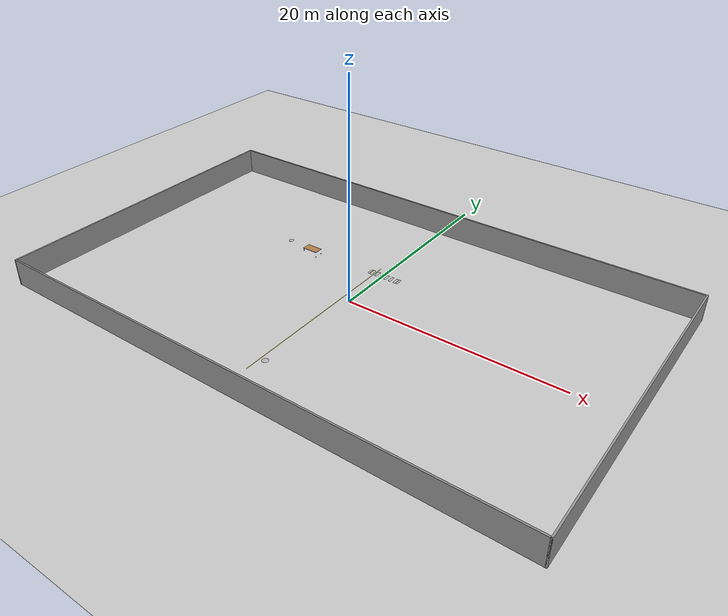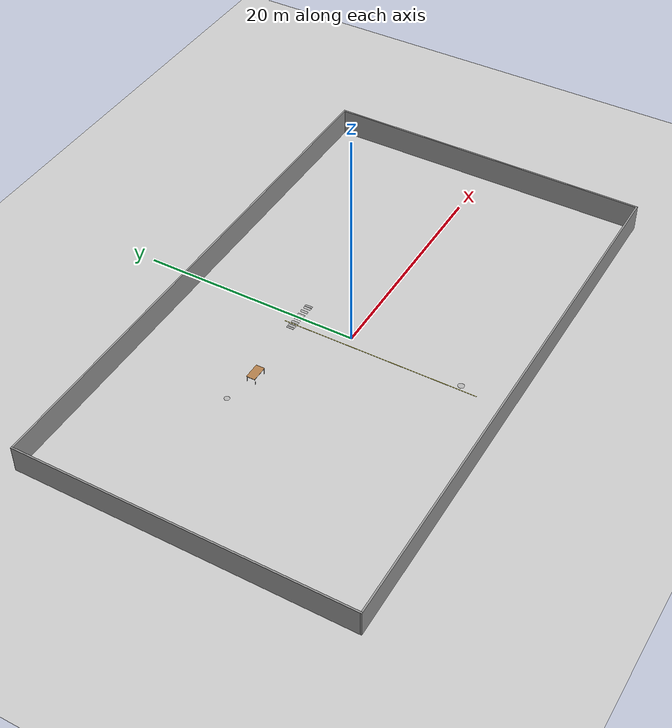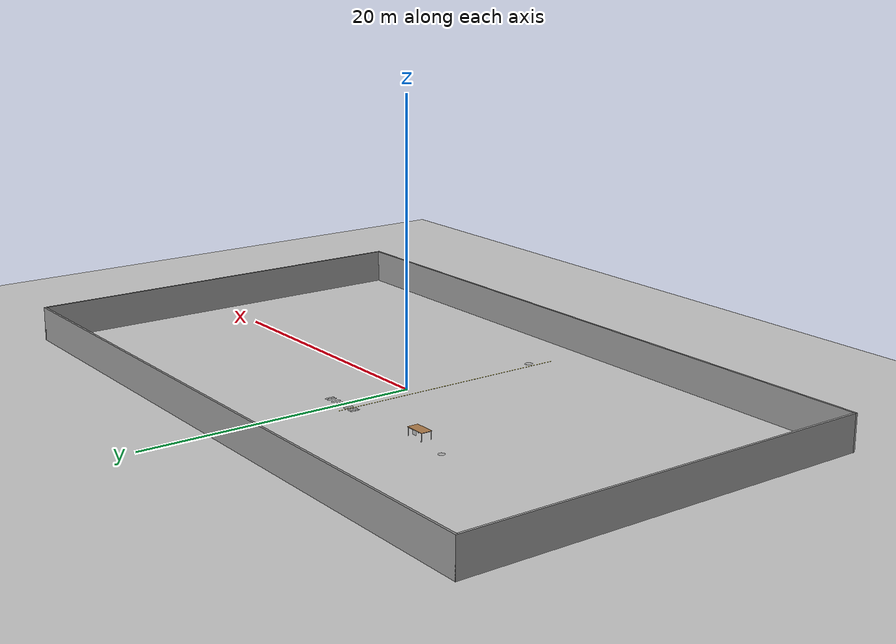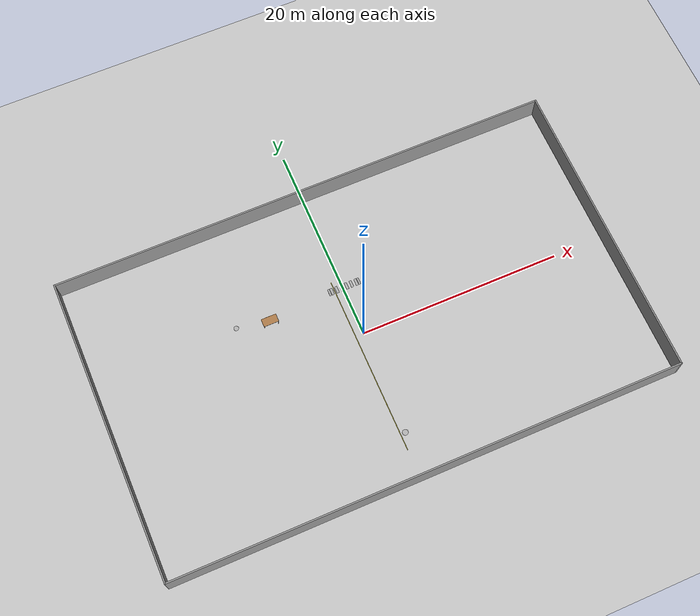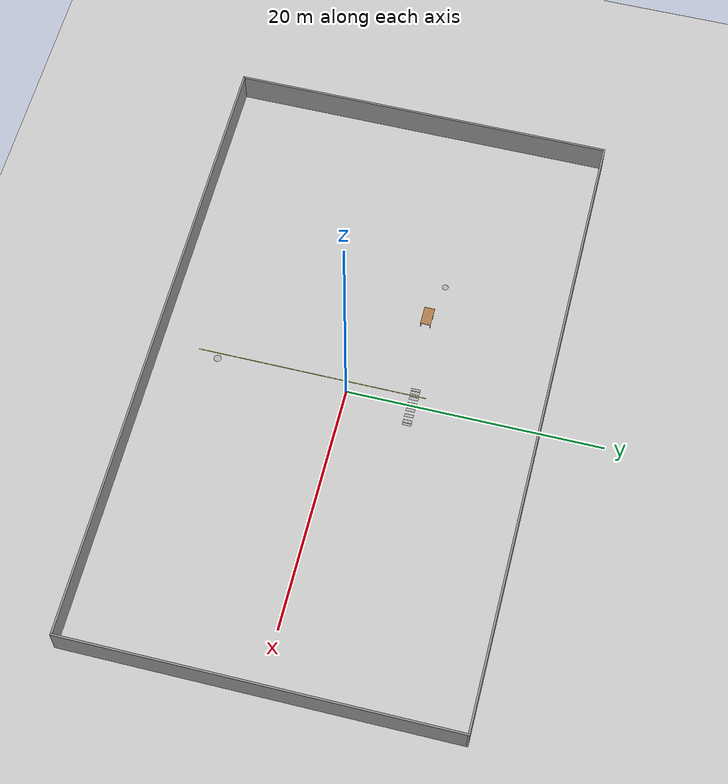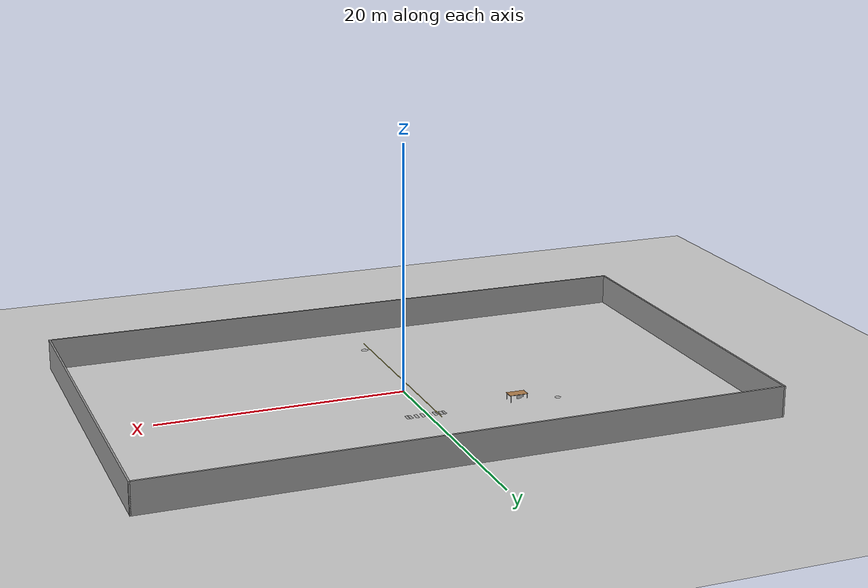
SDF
<sdf version="1.6">
 <world name="default">
  <model name="ground_plane">
   <static>1</static>
   <link name="link">
    <collision name="collision">
     <geometry><plane><normal>0 0 1</normal><size>100 100</size></plane></geometry>
     <surface><friction><ode><mu>100</mu><mu2>50</mu2></ode></friction></surface>
    </collision>
    <visual name="visual">
     <cast_shadows>0</cast_shadows>
     <geometry><plane><normal>0 0 1</normal><size>100 100</size></plane></geometry>
     <material>
      <script><uri>file://media/materials/scripts/gazebo.material</uri><name>Gazebo/Grey</name></script>
     </material>
    </visual>
   </link>
  </model>
  <model name="factoryWall">
   <link name="Wall_0">
    <collision name="Wall_0_Collision">
     <geometry><box><size>30.15 0.15 2.5</size></box></geometry>
     <pose>0 0 1.25 0 -0 0</pose>
    </collision>
    <visual name="Wall_0_Visual">
     <pose>0 0 1.25 0 -0 0</pose>
     <geometry><box><size>30.15 0.15 2.5</size></box></geometry>
     <material>
      <script><uri>file://media/materials/scripts/gazebo.material</uri><name>Gazebo/Grey</name></script>
      <ambient>1 1 1 1</ambient>
     </material>
     <meta><layer>0</layer></meta>
    </visual>
    <pose>25 0 0 0 -0 1.5708</pose>
   </link>
   <link name="Wall_2">
    <collision name="Wall_2_Collision">
     <geometry><box><size>30.15 0.15 2.5</size></box></geometry>
     <pose>0 0 1.25 0 -0 0</pose>
    </collision>
    <visual name="Wall_2_Visual">
     <pose>0 0 1.25 0 -0 0</pose>
     <geometry><box><size>30.15 0.15 2.5</size></box></geometry>
     <material>
      <script><uri>file://media/materials/scripts/gazebo.material</uri><name>Gazebo/Grey</name></script>
      <ambient>1 1 1 1</ambient>
     </material>
     <meta><layer>0</layer></meta>
    </visual>
    <pose>-25 0 0 0 -0 1.5708</pose>
   </link>
   <link name="Wall_4">
    <collision name="Wall_4_Collision">
     <geometry><box><size>50.15 0.15 2.5</size></box></geometry>
     <pose>0 0 1.25 0 -0 0</pose>
    </collision>
    <visual name="Wall_4_Visual">
     <pose>0 0 1.25 0 -0 0</pose>
     <geometry><box><size>50.15 0.15 2.5</size></box></geometry>
     <material>
      <script><uri>file://media/materials/scripts/gazebo.material</uri><name>Gazebo/Grey</name></script>
      <ambient>1 1 1 1</ambient>
     </material>
     <meta><layer>0</layer></meta>
    </visual>
    <pose>0 15 0 0 -0 0</pose>
   </link>
   <link name="Wall_6">
    <collision name="Wall_6_Collision">
     <geometry><box><size>50.15 0.15 2.5</size></box></geometry>
     <pose>0 0 1.25 0 -0 0</pose>
    </collision>
    <visual name="Wall_6_Visual">
     <pose>0 0 1.25 0 -0 0</pose>
     <geometry><box><size>50.15 0.15 2.5</size></box></geometry>
     <material>
      <script><uri>file://media/materials/scripts/gazebo.material</uri><name>Gazebo/Grey</name></script>
      <ambient>1 1 1 1</ambient>
     </material>
     <meta><layer>0</layer></meta>
    </visual>
    <pose>0 -15 0 0 -0 0</pose>
   </link>
   <static>1</static>
  </model>
  <model name="line18m_0">
   <link name="link_1">
    <inertial>
     <mass>1</mass>
     <inertia>
      <ixx>0.166667</ixx>
      <ixy>0</ixy>
      <ixz>0</ixz>
      <iyy>0.166667</iyy>
      <iyz>0</iyz>
      <izz>0.166667</izz>
     </inertia>
    </inertial>
    <visual name="visual">
     <geometry><box><size>0.05 18 0.001</size></box></geometry>
     <material>
      <lighting>1</lighting>
      <script><uri>file://media/materials/scripts/gazebo.material</uri><name>Gazebo/Yellow</name></script>
     </material>
    </visual>
   </link>
   <static>1</static>
   <pose>-0.857987 -2.97176 0 0 -0 0</pose>
  </model>
  <model name="crosswalk_3">
   <link name="link_0">
    <inertial>
     <mass>1</mass>
     <inertia>
      <ixx>0.166667</ixx>
      <ixy>0</ixy>
      <ixz>0</ixz>
      <iyy>0.166667</iyy>
      <iyz>0</iyz>
      <izz>0.166667</izz>
     </inertia>
    </inertial>
    <visual name="visual">
     <pose>0.25 0 0 0 -0 0</pose>
     <geometry><box><size>0.25 0.7 0.001</size></box></geometry>
     <material><lighting>1</lighting></material>
    </visual>
    <visual name="ModelPreview_0::link_0::visual_1">
     <pose>0.75 0 0 0 -0 0</pose>
     <geometry><box><size>0.25 0.7 0.001</size></box></geometry>
     <material><lighting>1</lighting></material>
    </visual>
    <visual name="ModelPreview_0::link_0::visual_2">
     <pose>1.25 0 0 0 -0 0</pose>
     <geometry><box><size>0.25 0.7 0.001</size></box></geometry>
     <material><lighting>1</lighting></material>
    </visual>
    <visual name="ModelPreview_0::link_0::visual_3">
     <pose>-0.25 0 0 0 -0 0</pose>
     <geometry><box><size>0.25 0.7 0.001</size></box></geometry>
     <material><lighting>1</lighting></material>
    </visual>
    <visual name="ModelPreview_0::link_0::visual_4">
     <pose>-0.75 0 0 0 -0 0</pose>
     <geometry><box><size>0.25 0.7 0.001</size></box></geometry>
     <material><lighting>1</lighting></material>
    </visual>
    <visual name="ModelPreview_0::link_0::visual_5">
     <pose>-1.25 0 0 0 -0 0</pose>
     <geometry><box><size>0.25 0.7 0.001</size></box></geometry>
     <material><lighting>1</lighting></material>
    </visual>
    <visual name="ModelPreview_0::link_0::visual_6">
     <pose>-1.6 0.35 0 -1.5708 -0 -1.5708</pose>
     <geometry>
      <mesh><uri>model://crosswalk/model/Warning+sign+confined+space/model.dae</uri><scale>2.35 2 0.9</scale></mesh>
     </geometry>
    </visual>
    <visual name="ModelPreview_0::link_0::visual_7">
     <pose>1.6 -0.35 0 -1.5708 0 1.5708</pose>
     <geometry>
      <mesh><uri>model://crosswalk/model/Warning+sign+confined+space/model.dae</uri><scale>2.35 2 0.9</scale></mesh>
     </geometry>
     <material><lighting>1</lighting></material>
    </visual>
   </link>
   <static>1</static>
   <pose>0.13411 5.11242 0 0 -0 0</pose>
  </model>
  <model name="stopSign_5">
   <link name="link_0">
    <inertial>
     <mass>1</mass>
     <inertia><ixx>0.145833</ixx><ixy>0</ixy><ixz>0</ixz><iyy>0.145833</iyy><iyz>0</iyz><izz>0.125</izz></inertia>
    </inertial>
    <visual name="visual">
     <geometry><mesh><uri>model://stopSign/model/model.dae</uri><scale>1 1 0.1</scale></mesh></geometry>
     <material><lighting>1</lighting></material>
    </visual>
   </link>
   <static>1</static>
   <pose>-0.103323 -10.0703 0 0 0 -3.14159</pose>
  </model>
  <model name="noForklift_1">
   <link name="link_3">
    <inertial>
     <mass>1</mass>
     <inertia>
      <ixx>0.166667</ixx>
      <ixy>0</ixy>
      <ixz>0</ixz>
      <iyy>0.166667</iyy>
      <iyz>0</iyz>
      <izz>0.166667</izz>
     </inertia>
    </inertial>
    <visual name="ModelPreview_6::link_3::visual_9">
     <pose>-0.08 -0.31 0 0 -0 1</pose>
     <geometry>
      <mesh><uri>model://noForklift/model/model.dae</uri><scale>0.266 0.266 0.266</scale></mesh>
     </geometry>
     <material><lighting>1</lighting></material>
    </visual>
    <collision name="collision_9">
     <geometry><cylinder><radius>0.25</radius><length>0.001</length></cylinder></geometry>
     <surface>
      <friction>
       <ode><mu>1</mu><mu2>1</mu2><fdir1>0 0 0</fdir1><slip1>0</slip1><slip2>0</slip2></ode>
       <torsional>
        <coefficient>1</coefficient>
        <patch_radius>0</patch_radius>
        <surface_radius>0</surface_radius>
        <use_patch_radius>1</use_patch_radius>
        <ode><slip>0</slip></ode>
       </torsional>
      </friction>
      <bounce><restitution_coefficient>0</restitution_coefficient><threshold>1e+06</threshold></bounce>
      <contact>
       <collide_without_contact>0</collide_without_contact>
       <collide_without_contact_bitmask>1</collide_without_contact_bitmask>
       <collide_bitmask>1</collide_bitmask>
       <ode>
        <soft_cfm>0</soft_cfm>
        <soft_erp>0.2</soft_erp>
        <kp>1e+13</kp>
        <kd>1</kd>
        <max_vel>0.01</max_vel>
        <min_depth>0</min_depth>
       </ode>
       <bullet>
        <split_impulse>1</split_impulse>
        <split_impulse_penetration_threshold>-0.01</split_impulse_penetration_threshold>
        <soft_cfm>0</soft_cfm>
        <soft_erp>0.2</soft_erp>
        <kp>1e+13</kp>
        <kd>1</kd>
       </bullet>
      </contact>
     </surface>
    </collision>
   </link>
   <static>1</static>
   <pose>-10.83 5.4 0 0 -0 1.5708</pose>
  </model>
  <model name="table_0">
   <static>1</static>
   <link name="link">
    <collision name="surface">
     <pose>0 0 1 0 -0 0</pose>
     <geometry><box><size>1.5 0.8 0.03</size></box></geometry>
     <surface><friction><ode><mu>0.6</mu><mu2>0.6</mu2></ode></friction></surface>
    </collision>
    <visual name="visual1">
     <pose>0 0 1 0 -0 0</pose>
     <geometry><box><size>1.5 0.8 0.03</size></box></geometry>
     <material>
      <script><uri>file://media/materials/scripts/gazebo.material</uri><name>Gazebo/Wood</name></script>
     </material>
    </visual>
    <collision name="front_left_leg">
     <pose>0.68 0.38 0.5 0 -0 0</pose>
     <geometry><cylinder><radius>0.02</radius><length>1</length></cylinder></geometry>
    </collision>
    <visual name="front_left_leg">
     <pose>0.68 0.38 0.5 0 -0 0</pose>
     <geometry><cylinder><radius>0.02</radius><length>1</length></cylinder></geometry>
     <material>
      <script><uri>file://media/materials/scripts/gazebo.material</uri><name>Gazebo/Grey</name></script>
     </material>
    </visual>
    <collision name="front_right_leg">
     <pose>0.68 -0.38 0.5 0 -0 0</pose>
     <geometry><cylinder><radius>0.02</radius><length>1</length></cylinder></geometry>
    </collision>
    <visual name="front_right_leg">
     <pose>0.68 -0.38 0.5 0 -0 0</pose>
     <geometry><cylinder><radius>0.02</radius><length>1</length></cylinder></geometry>
     <material>
      <script><uri>file://media/materials/scripts/gazebo.material</uri><name>Gazebo/Grey</name></script>
     </material>
    </visual>
    <collision name="back_right_leg">
     <pose>-0.68 -0.38 0.5 0 -0 0</pose>
     <geometry><cylinder><radius>0.02</radius><length>1</length></cylinder></geometry>
    </collision>
    <visual name="back_right_leg">
     <pose>-0.68 -0.38 0.5 0 -0 0</pose>
     <geometry><cylinder><radius>0.02</radius><length>1</length></cylinder></geometry>
     <material>
      <script><uri>file://media/materials/scripts/gazebo.material</uri><name>Gazebo/Grey</name></script>
     </material>
    </visual>
    <collision name="back_left_leg">
     <pose>-0.68 0.38 0.5 0 -0 0</pose>
     <geometry><cylinder><radius>0.02</radius><length>1</length></cylinder></geometry>
    </collision>
    <visual name="back_left_leg">
     <pose>-0.68 0.38 0.5 0 -0 0</pose>
     <geometry><cylinder><radius>0.02</radius><length>1</length></cylinder></geometry>
     <material>
      <script><uri>file://media/materials/scripts/gazebo.material</uri><name>Gazebo/Grey</name></script>
     </material>
    </visual>
   </link>
   <pose>-7.68152 4.54 -0.5 0 -0 0</pose>
  </model>
  <model name="60x45sign_keepaway_0">
   <link name="link_0">
    <inertial>
     <mass>1</mass>
     <inertia>
      <ixx>0.166667</ixx>
      <ixy>0</ixy>
      <ixz>0</ixz>
      <iyy>0.166667</iyy>
      <iyz>0</iyz>
      <izz>0.166667</izz>
     </inertia>
    </inertial>
    <visual name="visual">
     <pose>-0.2 0 -0.15 0 -0 0</pose>
     <geometry>
      <mesh><uri>model://60x45sign_keepaway/model/model.dae</uri><scale>1.4 1 1.4</scale></mesh>
     </geometry>
     <material><lighting>1</lighting></material>
    </visual>
    <collision name="collision">
     <geometry><box><size>0.6 0.005 0.45</size></box></geometry>
     <surface>
      <friction>
       <ode><mu>1</mu><mu2>1</mu2><fdir1>0 0 0</fdir1><slip1>0</slip1><slip2>0</slip2></ode>
       <torsional>
        <coefficient>1</coefficient>
        <patch_radius>0</patch_radius>
        <surface_radius>0</surface_radius>
        <use_patch_radius>1</use_patch_radius>
        <ode><slip>0</slip></ode>
       </torsional>
      </friction>
      <bounce><restitution_coefficient>0</restitution_coefficient><threshold>1e+06</threshold></bounce>
      <contact>
       <collide_without_contact>0</collide_without_contact>
       <collide_without_contact_bitmask>1</collide_without_contact_bitmask>
       <collide_bitmask>1</collide_bitmask>
       <ode>
        <soft_cfm>0</soft_cfm>
        <soft_erp>0.2</soft_erp>
        <kp>1e+13</kp>
        <kd>1</kd>
        <max_vel>0.01</max_vel>
        <min_depth>0</min_depth>
       </ode>
       <bullet>
        <split_impulse>1</split_impulse>
        <split_impulse_penetration_threshold>-0.01</split_impulse_penetration_threshold>
        <soft_cfm>0</soft_cfm>
        <soft_erp>0.2</soft_erp>
        <kp>1e+13</kp>
        <kd>1</kd>
       </bullet>
      </contact>
     </surface>
    </collision>
   </link>
   <static>1</static>
   <pose>-7.66035 4.95 0.35 0 0 -3.14159</pose>
  </model>
 </world>
</sdf>
